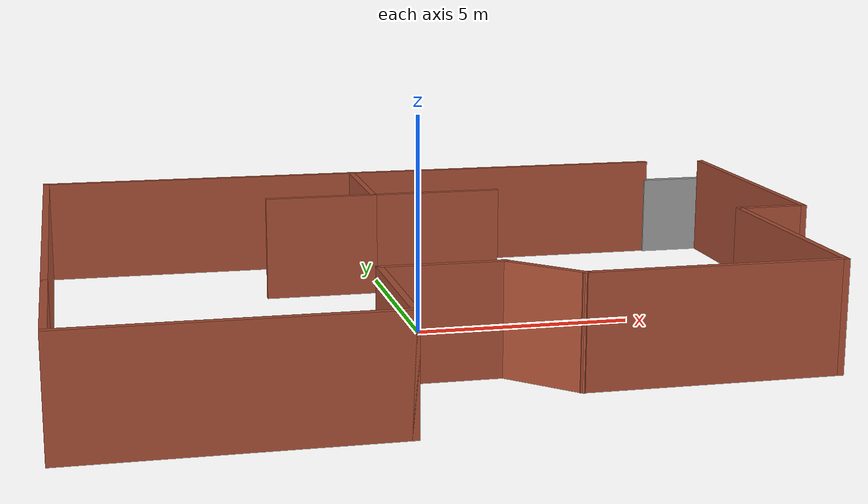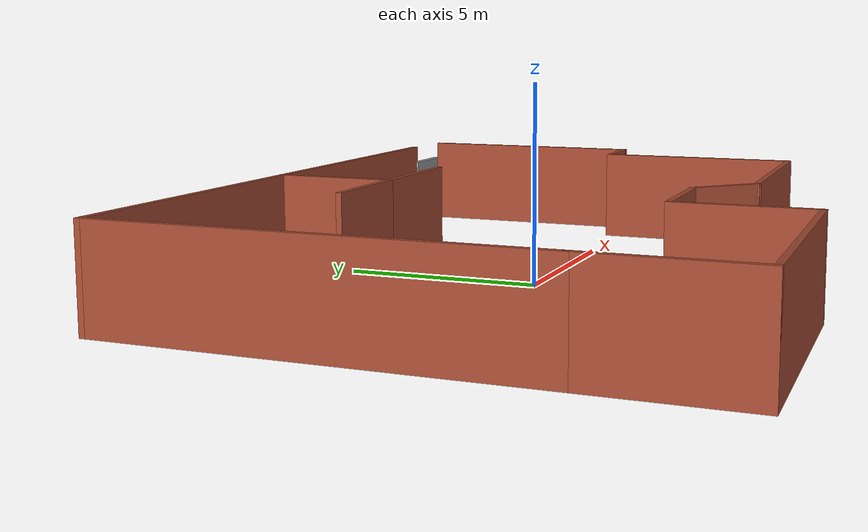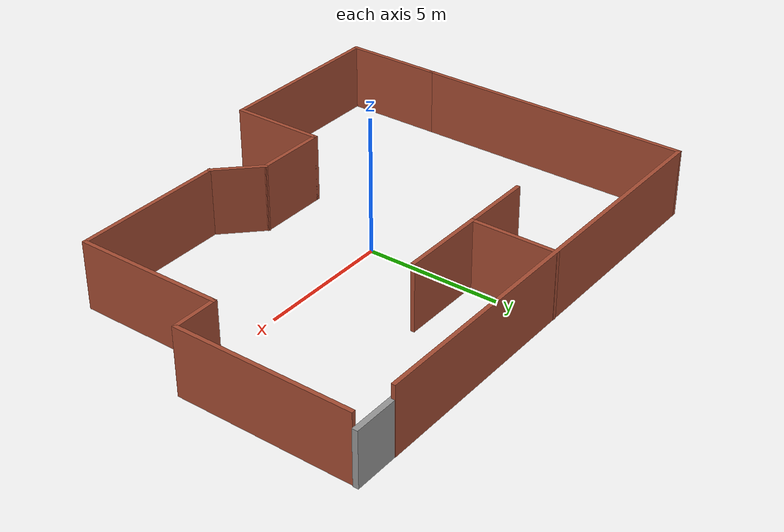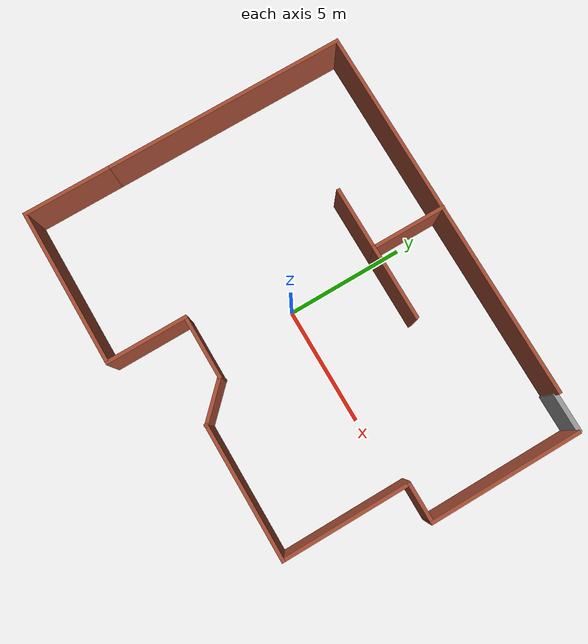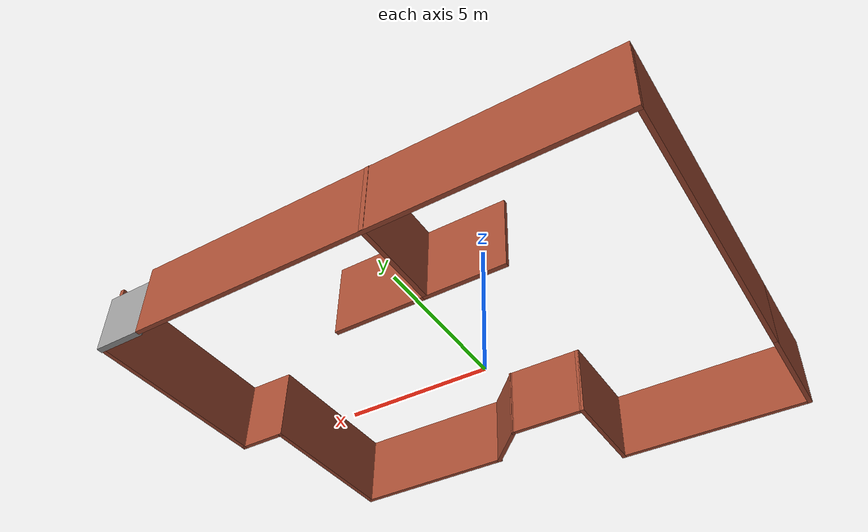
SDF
<?xml version='1.0'?>
<sdf version='1.6'>
  <model name='mybuilding'>
    <pose frame=''>0.656517 -0.067165 0 0 -0 0</pose>
    <link name='Door_0'>
      <collision name='Door_0_Collision'>
        <geometry>
          <box>
            <size>1.70911 0.2 2</size>
          </box>
        </geometry>
        <pose frame=''>0 0 1 0 -0 0</pose>
      </collision>
      <visual name='Door_0_Visual'>
        <pose frame=''>0 0 1 0 -0 0</pose>
        <geometry>
          <box>
            <size>1.70911 0.2 2</size>
          </box>
        </geometry>
        <material>
          <script>
            <uri>file://media/materials/scripts/gazebo.material</uri>
            <name>Gazebo/Grey</name>
          </script>
        </material>
      </visual>
      <pose frame=''>8.10021 6.93466 0 0 -0 0</pose>
    </link>
    <link name='Wall_10'>
      <collision name='Wall_10_Collision'>
        <geometry>
          <box>
            <size>2.75 0.15 2.5</size>
          </box>
        </geometry>
        <pose frame=''>0 0 1.25 0 -0 0</pose>
      </collision>
      <visual name='Wall_10_Visual'>
        <pose frame=''>0 0 1.25 0 -0 0</pose>
        <geometry>
          <box>
            <size>2.75 0.15 2.5</size>
          </box>
        </geometry>
        <material>
          <script>
            <uri>file://media/materials/scripts/gazebo.material</uri>
            <name>Gazebo/Bricks</name>
          </script>
          <ambient>1 1 1 1</ambient>
        </material>
        <meta>
          <layer>0</layer>
        </meta>
      </visual>
      <pose frame=''>-0.954074 -3.63104 0 0 -0 0</pose>
    </link>
    <link name='Wall_12'>
      <collision name='Wall_12_Collision'>
        <geometry>
          <box>
            <size>5.75 0.15 2.5</size>
          </box>
        </geometry>
        <pose frame=''>0 0 1.25 0 -0 0</pose>
      </collision>
      <visual name='Wall_12_Visual'>
        <pose frame=''>0 0 1.25 0 -0 0</pose>
        <geometry>
          <box>
            <size>5.75 0.15 2.5</size>
          </box>
        </geometry>
        <material>
          <script>
            <uri>file://media/materials/scripts/gazebo.material</uri>
            <name>Gazebo/Bricks</name>
          </script>
          <ambient>1 1 1 1</ambient>
        </material>
        <meta>
          <layer>0</layer>
        </meta>
      </visual>
      <pose frame=''>4.45407 -4.93919 0 0 -0 0</pose>
    </link>
    <link name='Wall_13'>
      <collision name='Wall_13_Collision'>
        <geometry>
          <box>
            <size>5.5 0.15 2.5</size>
          </box>
        </geometry>
        <pose frame=''>0 0 1.25 0 -0 0</pose>
      </collision>
      <visual name='Wall_13_Visual'>
        <pose frame=''>0 0 1.25 0 -0 0</pose>
        <geometry>
          <box>
            <size>5.5 0.15 2.5</size>
          </box>
        </geometry>
        <material>
          <script>
            <uri>file://media/materials/scripts/gazebo.material</uri>
            <name>Gazebo/Bricks</name>
          </script>
          <ambient>1 1 1 1</ambient>
        </material>
        <meta>
          <layer>0</layer>
        </meta>
      </visual>
      <pose frame=''>7.25407 -2.26419 0 0 -0 1.5708</pose>
    </link>
    <link name='Wall_14'>
      <collision name='Wall_14_Collision'>
        <geometry>
          <box>
            <size>1.75 0.15 2.5</size>
          </box>
        </geometry>
        <pose frame=''>0 0 1.25 0 -0 0</pose>
      </collision>
      <visual name='Wall_14_Visual'>
        <pose frame=''>0 0 1.25 0 -0 0</pose>
        <geometry>
          <box>
            <size>1.75 0.15 2.5</size>
          </box>
        </geometry>
        <material>
          <script>
            <uri>file://media/materials/scripts/gazebo.material</uri>
            <name>Gazebo/Bricks</name>
          </script>
          <ambient>1 1 1 1</ambient>
        </material>
        <meta>
          <layer>0</layer>
        </meta>
      </visual>
      <pose frame=''>8.05407 0.410812 0 0 -0 0</pose>
    </link>
    <link name='Wall_15'>
      <collision name='Wall_15_Collision'>
        <geometry>
          <box>
            <size>6.5 0.15 2.5</size>
          </box>
        </geometry>
        <pose frame=''>0 0 1.25 0 -0 0</pose>
      </collision>
      <visual name='Wall_15_Visual'>
        <pose frame=''>0 0 1.25 0 -0 0</pose>
        <geometry>
          <box>
            <size>6.5 0.15 2.5</size>
          </box>
        </geometry>
        <material>
          <script>
            <uri>file://media/materials/scripts/gazebo.material</uri>
            <name>Gazebo/Bricks</name>
          </script>
          <ambient>1 1 1 1</ambient>
        </material>
        <meta>
          <layer>0</layer>
        </meta>
      </visual>
      <pose frame=''>8.85407 3.58581 0 0 -0 1.5708</pose>
    </link>
    <link name='Wall_17'>
      <collision name='Wall_17_Collision'>
        <geometry>
          <box>
            <size>16.25 0.15 2.5</size>
          </box>
        </geometry>
        <pose frame=''>0 0 1.25 0 -0 0</pose>
      </collision>
      <visual name='Wall_17_Visual'>
        <pose frame=''>0 0 1.25 0 -0 0</pose>
        <geometry>
          <box>
            <size>16.25 0.15 2.5</size>
          </box>
        </geometry>
        <material>
          <script>
            <uri>file://media/materials/scripts/gazebo.material</uri>
            <name>Gazebo/Bricks</name>
          </script>
          <ambient>1 1 1 1</ambient>
        </material>
        <meta>
          <layer>0</layer>
        </meta>
      </visual>
      <pose frame=''>-0.804074 6.96896 0 0 -0 0</pose>
    </link>
    <link name='Wall_19'>
      <collision name='Wall_19_Collision'>
        <geometry>
          <box>
            <size>2 0.15 2.5</size>
          </box>
        </geometry>
        <pose frame=''>0 0 1.25 0 -0 0</pose>
      </collision>
      <visual name='Wall_19_Visual'>
        <pose frame=''>0 0 1.25 0 -0 0</pose>
        <geometry>
          <box>
            <size>2 0.15 2.5</size>
          </box>
        </geometry>
        <material>
          <script>
            <uri>file://media/materials/scripts/gazebo.material</uri>
            <name>Gazebo/Bricks</name>
          </script>
          <ambient>1 1 1 1</ambient>
        </material>
        <meta>
          <layer>0</layer>
        </meta>
      </visual>
      <pose frame=''>1 -4.28511 0 0 0 -0.785398</pose>
    </link>
    <link name='Wall_21'>
      <collision name='Wall_21_Collision'>
        <geometry>
          <box>
            <size>3.25 0.15 2.5</size>
          </box>
        </geometry>
        <pose frame=''>0 0 1.25 0 -0 0</pose>
      </collision>
      <visual name='Wall_21_Visual'>
        <pose frame=''>0 0 1.25 0 -0 0</pose>
        <geometry>
          <box>
            <size>3.25 0.15 2.5</size>
          </box>
        </geometry>
        <material>
          <script>
            <uri>file://media/materials/scripts/gazebo.material</uri>
            <name>Gazebo/Bricks</name>
          </script>
          <ambient>1 1 1 1</ambient>
        </material>
        <meta>
          <layer>0</layer>
        </meta>
      </visual>
      <pose frame=''>-0.941556 5.43104 0 0 0 -1.5708</pose>
    </link>
    <link name='Wall_22'>
      <collision name='Wall_22_Collision'>
        <geometry>
          <box>
            <size>2.75 0.15 2.5</size>
          </box>
        </geometry>
        <pose frame=''>0 0 1.25 0 -0 0</pose>
      </collision>
      <visual name='Wall_22_Visual'>
        <pose frame=''>0 0 1.25 0 -0 0</pose>
        <geometry>
          <box>
            <size>2.75 0.15 2.5</size>
          </box>
        </geometry>
        <material>
          <script>
            <uri>file://media/materials/scripts/gazebo.material</uri>
            <name>Gazebo/Bricks</name>
          </script>
          <ambient>1 1 1 1</ambient>
        </material>
        <meta>
          <layer>0</layer>
        </meta>
      </visual>
      <pose frame=''>-2.24156 3.88104 0 0 -0 3.14159</pose>
    </link>
    <link name='Wall_24'>
      <collision name='Wall_24_Collision'>
        <geometry>
          <box>
            <size>3.25 0.15 2.5</size>
          </box>
        </geometry>
        <pose frame=''>0 0 1.25 0 -0 0</pose>
      </collision>
      <visual name='Wall_24_Visual'>
        <pose frame=''>0 0 1.25 0 -0 0</pose>
        <geometry>
          <box>
            <size>3.25 0.15 2.5</size>
          </box>
        </geometry>
        <material>
          <script>
            <uri>file://media/materials/scripts/gazebo.material</uri>
            <name>Gazebo/Bricks</name>
          </script>
          <ambient>1 1 1 1</ambient>
        </material>
        <meta>
          <layer>0</layer>
        </meta>
      </visual>
      <pose frame=''>0.608444 3.88104 0 0 -0 0</pose>
    </link>
    <link name='Wall_5'>
      <collision name='Wall_5_Collision'>
        <geometry>
          <box>
            <size>10.5 0.15 2.5</size>
          </box>
        </geometry>
        <pose frame=''>0 0 1.25 0 -0 0</pose>
      </collision>
      <visual name='Wall_5_Visual'>
        <pose frame=''>0 0 1.25 0 -0 0</pose>
        <geometry>
          <box>
            <size>10.5 0.15 2.5</size>
          </box>
        </geometry>
        <material>
          <script>
            <uri>file://media/materials/scripts/gazebo.material</uri>
            <name>Gazebo/Bricks</name>
          </script>
          <ambient>1 1 1 1</ambient>
        </material>
        <meta>
          <layer>0</layer>
        </meta>
      </visual>
      <pose frame=''>-8.85407 1.79396 0 0 0 -1.5708</pose>
    </link>
    <link name='Wall_7'>
      <collision name='Wall_7_Collision'>
        <geometry>
          <box>
            <size>3.75 0.15 2.5</size>
          </box>
        </geometry>
        <pose frame=''>0 0 1.25 0 -0 0</pose>
      </collision>
      <visual name='Wall_7_Visual'>
        <pose frame=''>0 0 1.25 0 -0 0</pose>
        <geometry>
          <box>
            <size>3.75 0.15 2.5</size>
          </box>
        </geometry>
        <material>
          <script>
            <uri>file://media/materials/scripts/gazebo.material</uri>
            <name>Gazebo/Bricks</name>
          </script>
          <ambient>1 1 1 1</ambient>
        </material>
        <meta>
          <layer>0</layer>
        </meta>
      </visual>
      <pose frame=''>-8.85407 -5.18104 0 0 0 -1.5708</pose>
    </link>
    <link name='Wall_8'>
      <collision name='Wall_8_Collision'>
        <geometry>
          <box>
            <size>6.75 0.15 2.5</size>
          </box>
        </geometry>
        <pose frame=''>0 0 1.25 0 -0 0</pose>
      </collision>
      <visual name='Wall_8_Visual'>
        <pose frame=''>0 0 1.25 0 -0 0</pose>
        <geometry>
          <box>
            <size>6.75 0.15 2.5</size>
          </box>
        </geometry>
        <material>
          <script>
            <uri>file://media/materials/scripts/gazebo.material</uri>
            <name>Gazebo/Bricks</name>
          </script>
          <ambient>1 1 1 1</ambient>
        </material>
        <meta>
          <layer>0</layer>
        </meta>
      </visual>
      <pose frame=''>-5.55407 -6.98104 0 0 -0 0</pose>
    </link>
    <link name='Wall_9'>
      <collision name='Wall_9_Collision'>
        <geometry>
          <box>
            <size>3.5 0.15 2.5</size>
          </box>
        </geometry>
        <pose frame=''>0 0 1.25 0 -0 0</pose>
      </collision>
      <visual name='Wall_9_Visual'>
        <pose frame=''>0 0 1.25 0 -0 0</pose>
        <geometry>
          <box>
            <size>3.5 0.15 2.5</size>
          </box>
        </geometry>
        <material>
          <script>
            <uri>file://media/materials/scripts/gazebo.material</uri>
            <name>Gazebo/Bricks</name>
          </script>
          <ambient>1 1 1 1</ambient>
        </material>
        <meta>
          <layer>0</layer>
        </meta>
      </visual>
      <pose frame=''>-2.25407 -5.30604 0 0 -0 1.5708</pose>
    </link>
    <static>1</static>
  </model>
</sdf>
